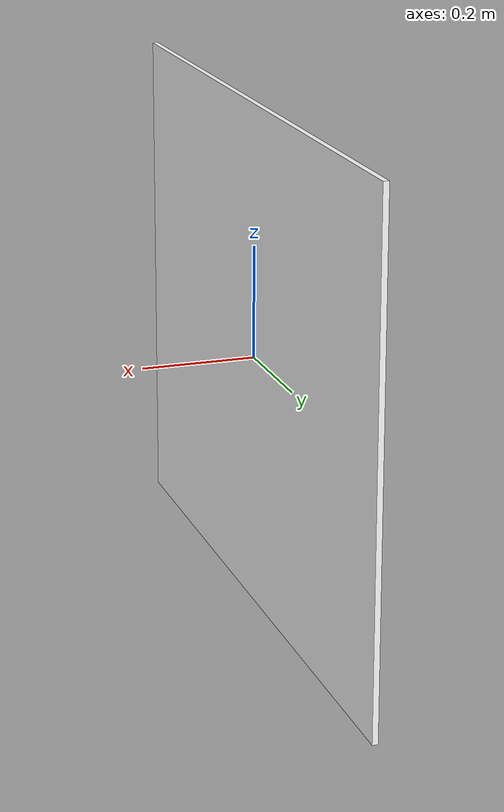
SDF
<?xml version="1.0" ?>
<sdf version="1.9">
  <model name="dar_art">
    <static>true</static>
    <link name="link">
      <visual name="canvas">
        <geometry><box><size>0.01 1.2 0.9</size></box></geometry>
        <material>
          <diffuse>1 1 1 1</diffuse>
          <pbr><metal><albedo_map>model://dar_art/materials/textures/sidi_bou_said_sunset.png</albedo_map></metal></pbr>
        </material>
      </visual>
    </link>
  </model>
</sdf>
